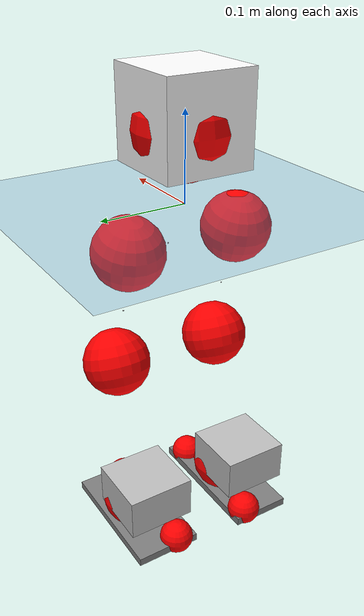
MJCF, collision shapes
<mujoco model="pi_12dof_release_v1">
  <compiler angle="radian" assetdir="assets" balanceinertia="true" inertiafromgeom="false"/>

  <option timestep="0.005" density="1.2" viscosity="2e-05"/>

  <size nkey="1"/>

  <visual>
    <quality shadowsize="8192"/>
    <map shadowclip="0.5"/>
  </visual>

  <default>
    <default class="/">
      <joint armature="0.01" damping="0.01" frictionloss="0.01"/>
      <geom contype="0" conaffinity="0" group="1" solref="-1000 -80"/>
      <site size="0.01 0.005 0.005" group="5"/>
      <general forcelimited="true" biastype="affine" gainprm="20" biasprm="0 -20 -0.5"/>
      <default class="foot">
        <geom size="0.0845 0.036 0.005" type="box" condim="6" group="4" priority="1" friction="0.9 0.2 0.2" solimp="0.015 1 0.005"/>
      </default>
      <default class="reward_collision_sphere">
        <geom group="5" rgba="1 0 0 1"/>
      </default>
    </default>
  </default>

  <asset>
    <texture type="skybox" colorspace="auto" name="//unnamed_texture_0" builtin="gradient" rgb1="0.95 0.95 0.95" rgb2="0.95 0.95 0.95" width="100" height="600"/>
    <texture type="2d" colorspace="auto" name="texplane" builtin="checker" rgb1="0.345 0.575 0.748" rgb2="0.345 0.575 0.748" markrgb="1 1 1" width="512" height="512"/>
    <material name="MatPlane" class="/" texture="texplane" texuniform="true" texrepeat="2 2" specular="0.9"/>
    <mesh name="baselink_1" class="/" file="baselink_1.STL"/>
    <mesh name="r_hip_pitch_link" class="/" file="r_hip_pitch_link.STL"/>
    <mesh name="r_hip_roll_link" class="/" file="r_hip_roll_link.STL"/>
    <mesh name="r_thigh_link" class="/" file="r_thigh_link.STL"/>
    <mesh name="r_calf_link" class="/" file="r_calf_link.STL"/>
    <mesh name="r_ankle_pitch_link" class="/" file="r_ankle_pitch_link.STL"/>
    <mesh name="r_ankle_roll_link" class="/" file="r_ankle_roll_link.STL"/>
    <mesh name="l_hip_pitch_link" class="/" file="l_hip_pitch_link.STL"/>
    <mesh name="l_hip_roll_link" class="/" file="l_hip_roll_link.STL"/>
    <mesh name="l_thigh_link" class="/" file="l_thigh_link.STL"/>
    <mesh name="l_calf_link" class="/" file="l_calf_link.STL"/>
    <mesh name="l_ankle_pitch_link" class="/" file="l_ankle_pitch_link.STL"/>
    <mesh name="l_ankle_roll_link" class="/" file="l_ankle_roll_link.STL"/>
  </asset>

  <worldbody>
    <geom name="floor" class="/" size="100 100 0.125" type="plane" group="0" material="MatPlane"/>
    <light name="toplight_shadow" class="/" pos="0 0 5" dir="0.0990148 0.0990148 -0.990148" type="directional" ambient="0.04 0.04 0.04" diffuse="0.55 0.55 0.55" specular="0.12 0.12 0.12"/>
    <light name="toplight_fill" class="/" pos="0 0 5" dir="0.0990148 0.0990148 -0.990148" type="directional" castshadow="false" ambient="0.04 0.04 0.04" diffuse="0.3 0.3 0.3" specular="0.08 0.08 0.08"/>
    <body name="trunk" pos="0.00100002 0.000218911 -0.000972835" quat="1 -2.32886e-05 0.00014423 -0.000222565">
      <inertial pos="-0.000308402 -0.00277131 0.0479998" quat="0.694932 0.00697821 0.0125819 0.718932" mass="2.37479" diaginertia="0.0104032 0.00468832 0.00914599"/>
      <joint name="//unnamed_joint_0" type="free"/>
      <geom name="//unnamed_geom_1" class="/" type="mesh" density="0" rgba="1 1 1 1" mesh="baselink_1"/>
      <geom name="//unnamed_geom_2" class="/" size="0.0509653 0.0509653 0.0509653" pos="0 0 0.0936659" type="box" rgba="1 1 1 1"/>
      <geom name="//unnamed_geom_3" class="reward_collision_sphere" size="0.0560618" pos="0 0 0.0819577"/>
      <site name="imu" class="/" pos="0.012066 -0.000476821 -0.0120137" size="0.0101931"/>
      <camera name="track" class="/" pos="0 -1.75196 0" quat="0.707107 0.707107 0 0" mode="trackcom"/>
      <camera name="ego_camera" class="/" pos="0.0758334 0 0.210748" quat="-0.5 -0.5 0.5 0.5"/>
      <body name="r_hip_pitch_link" pos="-0.00142588 -0.0211327 -0.0386459" quat="0.992198 -7.15368e-06 -0.124669 -8.99846e-06">
        <inertial pos="0.00100111 -0.0508943 -5.7548e-05" quat="-0.0189949 0.705772 -0.0284879 0.707611" mass="0.378449" diaginertia="0.000110591 4.78294e-05 0.000177197"/>
        <joint name="r_hip_pitch_joint" class="/" pos="0 0 0" axis="-0.00534399 -0.999984 0.00207398" stiffness="0.00471938" range="-1.74127 1.19923" armature="0.00910527" damping="0.0128575" frictionloss="0.0105363"/>
        <geom name="//unnamed_geom_4" class="/" type="mesh" density="0" rgba="0.75294 0.75294 0.75294 1" mesh="r_hip_pitch_link"/>
        <geom name="//unnamed_geom_5" class="/" size="0.000509653 0.000509653 0.000509653" type="box" rgba="0.75294 0.75294 0.75294 1"/>
        <body name="r_hip_roll_link" pos="-0.000327442 -0.0464538 0.000522045" quat="0.999999 0.000412898 0.000573574 -0.000873006">
          <inertial pos="-0.0010281 -0.000106444 -0.0720938" quat="0.702997 -0.0745303 -0.0782764 0.702932" mass="0.403284" diaginertia="0.000351326 0.000137991 0.000277195"/>
          <joint name="r_hip_roll_joint" class="/" pos="0 0 0" axis="-0.999983 0.00122181 -0.00561983" range="-0.118683 0.497164" armature="0.00984841" damping="0" frictionloss="0.0114617"/>
          <geom name="//unnamed_geom_6" class="/" type="mesh" density="0" rgba="0.75294 0.75294 0.75294 1" mesh="r_hip_roll_link"/>
          <geom name="//unnamed_geom_7" class="/" size="0.000509653 0.000509653 0.000509653" type="box" rgba="0.75294 0.75294 0.75294 1"/>
          <geom name="//unnamed_geom_8" class="reward_collision_sphere" size="0.0407722"/>
          <body name="r_thigh_link" pos="0.00109622 0.00273854 -0.0817848" quat="1 0.000260937 0.000500205 -9.47401e-05">
            <inertial pos="0.000373841 -0.000738915 -0.0553609" quat="0.737665 0.675167 0.000206967 -0.000478422" mass="0.119697" diaginertia="0.000129652 4.93554e-05 0.000126979"/>
            <joint name="r_thigh_joint" class="/" pos="0 0 0" axis="-0.000115917 0.00132913 -0.999999" range="-0.326063 0.618801" armature="0.0115599" damping="0.00570465" frictionloss="0.0100927"/>
            <geom name="//unnamed_geom_9" class="/" type="mesh" density="0" rgba="0.75294 0.75294 0.75294 1" mesh="r_thigh_link"/>
            <geom name="//unnamed_geom_10" class="/" size="0.000509653 0.000509653 0.000509653" type="box" rgba="0.75294 0.75294 0.75294 1"/>
            <body name="r_calf_link" pos="-0.00210673 -0.00369518 -0.0822599" quat="0.947649 6.7707e-06 0.319315 3.09328e-06">
              <inertial pos="-0.00126004 -0.00364372 -0.0826463" quat="0.999854 -0.00787338 -0.0094873 0.0118366" mass="0.8521" diaginertia="0.0036256 0.00185031 0.000375409"/>
              <joint name="r_calf_joint" class="/" pos="0 0 0" axis="0.000344762 -0.999995 0.00309523" range="-1.64993 0.633526" armature="0.0103714" damping="0.015127" frictionloss="0.0104617"/>
              <geom name="//unnamed_geom_11" class="/" type="mesh" density="0" rgba="0.75294 0.75294 0.75294 1" mesh="r_calf_link"/>
              <geom name="//unnamed_geom_12" class="/" size="0.000509653 0.000509653 0.000509653" type="box" rgba="0.75294 0.75294 0.75294 1"/>
              <geom name="//unnamed_geom_13" class="reward_collision_sphere" size="0.0407722"/>
              <body name="r_ankle_pitch_link" pos="0.00119892 0.0010916 -0.165778" quat="0.980066 0.000965543 -0.198671 -0.000373827">
                <inertial pos="0.00726893 0.00399381 -0.000484272" quat="0.00139922 0.707762 -0.000895097 0.706449" mass="0.19154" diaginertia="0.000324919 0.00011249 0.000273604"/>
                <joint name="r_ankle_pitch_joint" class="/" pos="0 0 0" axis="-0.00252573 -0.999996 -0.0015011" range="-1.25457 0.518434" armature="0.0104255" damping="0" frictionloss="0.00998954"/>
                <geom name="//unnamed_geom_14" class="/" type="mesh" density="0" rgba="0.75294 0.75294 0.75294 1" mesh="r_ankle_pitch_link"/>
                <geom name="//unnamed_geom_15" class="/" size="0.0397529 0.0407722 0.0254826" type="box" rgba="0.75294 0.75294 0.75294 1"/>
                <body name="r_ankle_roll_link" pos="0.0764085 0.00301078 -0.000288506" quat="1 4.60139e-05 6.67901e-05 9.69819e-05">
                  <inertial pos="-0.0258195 4.36176e-06 -0.0165865" quat="0.569601 0.430543 0.426948 0.554889" mass="0.562804" diaginertia="0.00120936 0.000546031 0.000635017"/>
                  <joint name="r_ankle_roll_joint" class="/" pos="0 0 0" axis="-0.999998 0.000400127 -0.00174731" range="-0.134832 0.150034" armature="0.0114595" damping="0.00803058" frictionloss="0.00967499"/>
                  <geom name="//unnamed_geom_16" class="/" type="mesh" density="0" rgba="0.75294 0.75294 0.75294 1" mesh="r_ankle_roll_link"/>
                  <geom name="//unnamed_geom_17" class="/" type="mesh" rgba="0.75294 0.75294 0.75294 1" mesh="r_ankle_roll_link"/>
                  <geom name="right_foot" class="foot" size="0.0846081 0.0365897 0.00488642" pos="-0.0515667 0 -0.0515163"/>
                  <geom name="//unnamed_geom_19" class="reward_collision_sphere" size="0.0407722" pos="-0.0505556 0 -0.0234165"/>
                  <geom name="//unnamed_geom_20" class="reward_collision_sphere" size="0.0203861" pos="0.0151667 0.0175196 -0.046833"/>
                  <geom name="//unnamed_geom_21" class="reward_collision_sphere" size="0.0203861" pos="-0.121333 0.0175196 -0.046833"/>
                  <site name="right_foot" class="foot" pos="-0.0515667 0 -0.0515163" size="0.0101931"/>
                </body>
              </body>
            </body>
          </body>
        </body>
      </body>
      <body name="l_hip_pitch_link" pos="0.00178999 0.0195421 -0.0405511" quat="0.992198 3.04433e-05 -0.124669 -1.37682e-05">
        <inertial pos="0.00074781 0.0478559 -0.00276039" quat="-0.0412418 0.70366 0.0373308 0.708356" mass="0.424856" diaginertia="0.000144399 5.64735e-05 0.000228407"/>
        <joint name="l_hip_pitch_joint" class="/" pos="0 0 0" axis="0.000179544 1 -0.00046386" range="-1.26105 1.74889" armature="0.0103859" damping="0.0130791" frictionloss="0.00974141"/>
        <geom name="//unnamed_geom_22" class="/" type="mesh" density="0" rgba="0.75294 0.75294 0.75294 1" mesh="l_hip_pitch_link"/>
        <geom name="//unnamed_geom_23" class="/" size="0.000509653 0.000509653 0.000509653" type="box" rgba="0.75294 0.75294 0.75294 1"/>
        <body name="l_hip_roll_link" pos="-0.00181333 0.049796 0.000366535" quat="1 -0.000444922 6.74223e-05 -9.13197e-05">
          <inertial pos="-0.00427834 -0.00104422 -0.0738893" quat="0.699681 -0.0749563 -0.0764169 0.706391" mass="0.40948" diaginertia="0.000335966 0.00014312 0.000275657"/>
          <joint name="l_hip_roll_joint" class="/" pos="0 0 0" axis="-0.999989 0.00435325 -0.00164264" range="-0.519862 0.137217" armature="0.0107207" damping="0.0134467" frictionloss="0.0100862"/>
          <geom name="//unnamed_geom_24" class="/" type="mesh" density="0" rgba="0.75294 0.75294 0.75294 1" mesh="l_hip_roll_link"/>
          <geom name="//unnamed_geom_25" class="/" size="0.000509653 0.000509653 0.000509653" type="box" rgba="0.75294 0.75294 0.75294 1"/>
          <geom name="//unnamed_geom_26" class="reward_collision_sphere" size="0.0407722"/>
          <body name="l_thigh_link" pos="4.64456e-05 -0.00118684 -0.0803351" quat="1 -0.000140743 -4.98765e-06 -0.00029123">
            <inertial pos="0.000115857 0.000515053 -0.054587" quat="0.674111 0.738626 -0.00244308 -0.000644826" mass="0.123309" diaginertia="0.00013478 5.17408e-05 0.000129856"/>
            <joint name="l_thigh_joint" class="/" pos="0 0 0" axis="0.000329279 0.000359533 -1" range="-0.6504 0.286954" armature="0.00968751" damping="0.00532244" frictionloss="0.0100556"/>
            <geom name="//unnamed_geom_27" class="/" type="mesh" density="0" rgba="0.75294 0.75294 0.75294 1" mesh="l_thigh_link"/>
            <geom name="//unnamed_geom_28" class="/" size="0.000509653 0.000509653 0.000509653" type="box" rgba="0.75294 0.75294 0.75294 1"/>
            <body name="l_calf_link" pos="0.0018926 0.000648723 -0.0823927" quat="0.947651 1.4164e-07 0.319308 2.98214e-06">
              <inertial pos="8.39157e-05 0.00245087 -0.0844163" quat="0.999933 -0.00886137 -0.00519428 0.00534724" mass="0.853376" diaginertia="0.00361003 0.00174019 0.00037118"/>
              <joint name="l_calf_joint" class="/" pos="0 0 0" axis="-4.15721e-06 0.999963 0.0085991" range="-0.644892 1.6336" armature="0.0102012" damping="0" frictionloss="0.00973264"/>
              <geom name="//unnamed_geom_29" class="/" type="mesh" density="0" rgba="0.75294 0.75294 0.75294 1" mesh="l_calf_link"/>
              <geom name="//unnamed_geom_30" class="/" size="0.000509653 0.000509653 0.000509653" type="box" rgba="0.75294 0.75294 0.75294 1"/>
              <geom name="//unnamed_geom_31" class="reward_collision_sphere" size="0.0407722"/>
              <body name="l_ankle_pitch_link" pos="0.00269746 -0.000240063 -0.166474" quat="0.979969 0.000327446 -0.199151 0.0007487">
                <inertial pos="0.00508348 -0.000664762 -0.000658368" quat="-0.00176795 0.707192 0.0011849 0.707018" mass="0.181544" diaginertia="0.000316632 0.000112793 0.000261383"/>
                <joint name="l_ankle_pitch_joint" class="/" pos="0 0 0" axis="-0.000509588 1 -3.24535e-05" stiffness="0.000609689" range="-0.507208 1.28905" armature="0.00982866" damping="0.00949585" frictionloss="0.00984486"/>
                <geom name="//unnamed_geom_32" class="/" type="mesh" density="0" rgba="0.75294 0.75294 0.75294 1" mesh="l_ankle_pitch_link"/>
                <geom name="//unnamed_geom_33" class="/" size="0.0397529 0.0407722 0.0254826" type="box" rgba="0.75294 0.75294 0.75294 1"/>
                <body name="l_ankle_roll_link" pos="0.0748802 0.00189889 0.000442481" quat="0.999999 -0.000485187 0.000949057 0.000475994">
                  <inertial pos="-0.0231788 -0.000361417 -0.0176747" quat="0.556334 0.426656 0.438655 0.562174" mass="0.56035" diaginertia="0.00120038 0.00053248 0.000627219"/>
                  <joint name="l_ankle_roll_joint" class="/" pos="0 0 0" axis="-1 0.000665667 0.000650017" range="-0.11265 0.133136" armature="0.011152" damping="0.0215085" frictionloss="0.00993234"/>
                  <geom name="//unnamed_geom_34" class="/" type="mesh" density="0" rgba="0.75294 0.75294 0.75294 1" mesh="l_ankle_roll_link"/>
                  <geom name="//unnamed_geom_35" class="/" type="mesh" rgba="0.75294 0.75294 0.75294 1" mesh="l_ankle_roll_link"/>
                  <geom name="left_foot" class="foot" size="0.080758 0.0397608 0.00489077" pos="-0.0515667 0 -0.0515163"/>
                  <geom name="//unnamed_geom_37" class="reward_collision_sphere" size="0.0407722" pos="-0.0505556 0 -0.0234165"/>
                  <geom name="//unnamed_geom_38" class="reward_collision_sphere" size="0.0203861" pos="0.0151667 -0.0175196 -0.046833"/>
                  <geom name="//unnamed_geom_39" class="reward_collision_sphere" size="0.0203861" pos="-0.121333 -0.0175196 -0.046833"/>
                  <site name="left_foot" class="foot" pos="-0.0515667 0 -0.0515163" size="0.0101931"/>
                </body>
              </body>
            </body>
          </body>
        </body>
      </body>
    </body>
  </worldbody>

  <contact>
    <pair class="/" geom1="floor" geom2="right_foot" name="//unnamed_contact_1"/>
    <pair class="/" geom1="floor" geom2="left_foot" name="//unnamed_contact_0"/>
  </contact>

  <actuator>
    <general name="r_hip_pitch_joint" class="/" joint="r_hip_pitch_joint" forcerange="-22.8249 22.8249" gainprm="19.1242" biasprm="0 -19.1242 -0.521059"/>
    <general name="r_hip_roll_joint" class="/" joint="r_hip_roll_joint" forcerange="-21.596 21.596" gainprm="19.1242" biasprm="0 -19.1242 -0.521059"/>
    <general name="r_thigh_joint" class="/" joint="r_thigh_joint" forcerange="-21.895 21.895" gainprm="19.1242" biasprm="0 -19.1242 -0.521059"/>
    <general name="r_calf_joint" class="/" joint="r_calf_joint" forcerange="-23.2712 23.2712" gainprm="19.1242" biasprm="0 -19.1242 -0.521059"/>
    <general name="r_ankle_pitch_joint" class="/" joint="r_ankle_pitch_joint" forcerange="-21.1284 21.1284" gainprm="19.1242" biasprm="0 -19.1242 -0.521059"/>
    <general name="r_ankle_roll_joint" class="/" joint="r_ankle_roll_joint" forcerange="-21.1909 21.1909" gainprm="19.1242" biasprm="0 -19.1242 -0.521059"/>
    <general name="l_hip_pitch_joint" class="/" joint="l_hip_pitch_joint" forcerange="-20.2004 20.2004" gainprm="19.1242" biasprm="0 -19.1242 -0.521059"/>
    <general name="l_hip_roll_joint" class="/" joint="l_hip_roll_joint" forcerange="-19.4177 19.4177" gainprm="19.1242" biasprm="0 -19.1242 -0.521059"/>
    <general name="l_thigh_joint" class="/" joint="l_thigh_joint" forcerange="-22.2233 22.2233" gainprm="19.1242" biasprm="0 -19.1242 -0.521059"/>
    <general name="l_calf_joint" class="/" joint="l_calf_joint" forcerange="-21.4141 21.4141" gainprm="19.1242" biasprm="0 -19.1242 -0.521059"/>
    <general name="l_ankle_pitch_joint" class="/" joint="l_ankle_pitch_joint" forcerange="-22.289 22.289" gainprm="19.1242" biasprm="0 -19.1242 -0.521059"/>
    <general name="l_ankle_roll_joint" class="/" joint="l_ankle_roll_joint" forcerange="-22.028 22.028" gainprm="19.1242" biasprm="0 -19.1242 -0.521059"/>
  </actuator>

  <sensor>
    <gyro site="imu" name="imu_angular_velocity"/>
    <velocimeter site="imu" name="imu_linear_velocity"/>
    <framelinvel objtype="site" objname="left_foot" name="left_foot_global_linear_velocity"/>
    <framelinvel objtype="site" objname="right_foot" name="right_foot_global_linear_velocity"/>
  </sensor>

  <keyframe>
    <key name="home" qpos="0 0 0.291 1 0 0 0 0.4 0 0 -0.8 0.4 0 -0.4 0 0 0.8 -0.4 0"/>
  </keyframe>
</mujoco>
